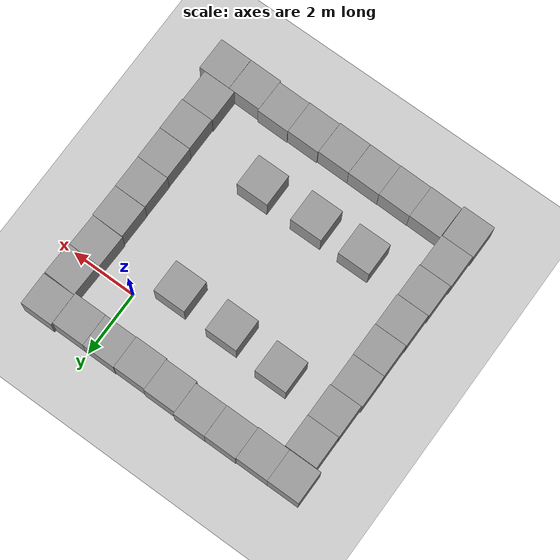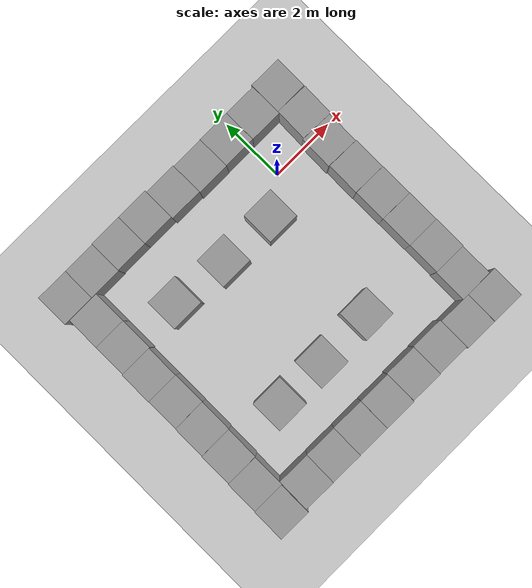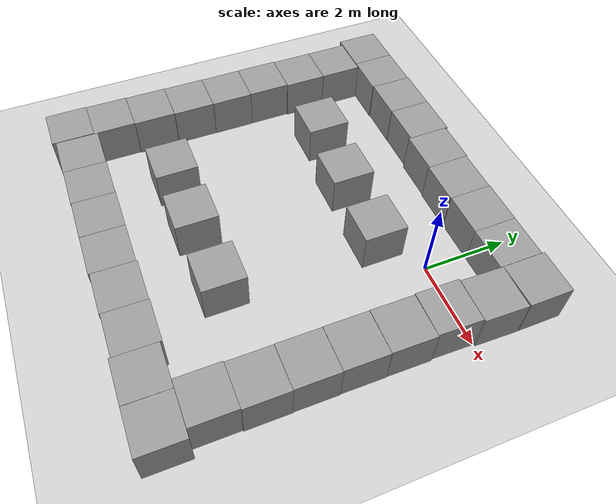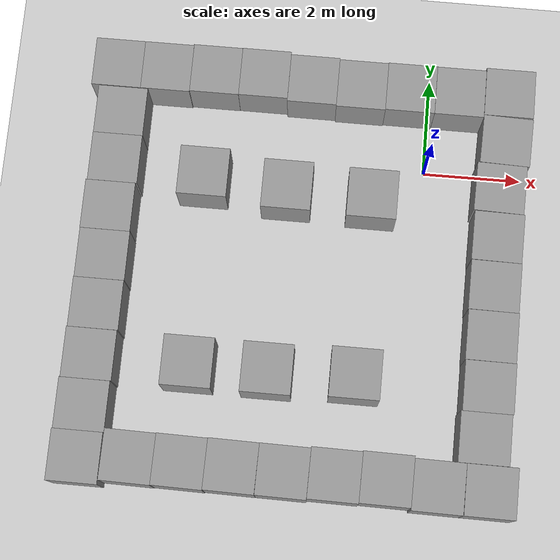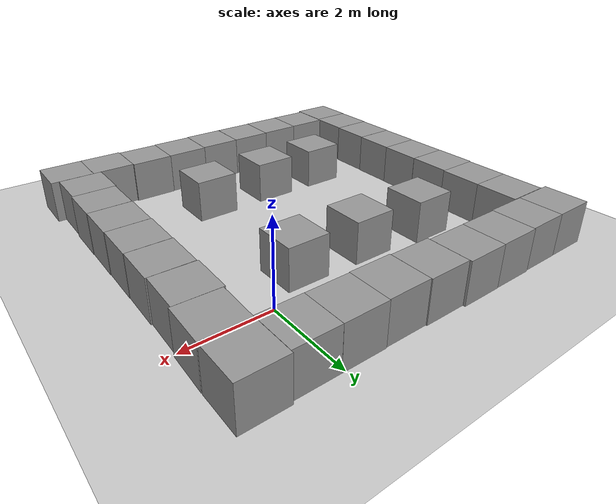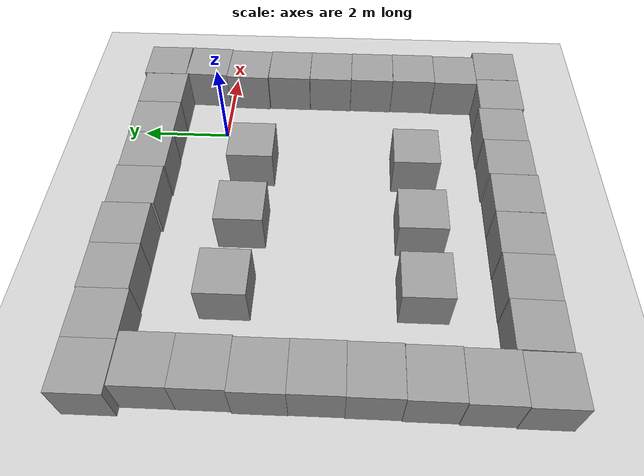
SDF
<sdf version="1.6">
 <world name="default">
  <light name="sun" type="directional">
   <pose>0 0 10 0 -0 0</pose>
   <diffuse>0.8 0.8 0.8 1</diffuse>
   <specular>0.1 0.1 0.1 1</specular>
   <attenuation>
    <range>1000</range>
    <constant>0.9</constant>
    <linear>0.01</linear>
    <quadratic>0.001</quadratic>
   </attenuation>
   <direction>-0.5 0.5 -1</direction>
  </light>
  <model name="ground_plane">
   <static>1</static>
   <link name="link">
    <collision name="collision">
     <geometry><plane><normal>0 0 1</normal><size>100 100</size></plane></geometry>
     <surface><friction><ode><mu>100</mu><mu2>50</mu2></ode></friction></surface>
    </collision>
    <visual name="visual">
     <cast_shadows>0</cast_shadows>
     <geometry><plane><normal>0 0 1</normal><size>100 100</size></plane></geometry>
     <material>
      <script><uri>file://media/materials/scripts/gazebo.material</uri><name>Gazebo/Grey</name></script>
     </material>
    </visual>
   </link>
  </model>
  <gravity>0 0 -9.8</gravity>
  <magnetic_field>6e-06 2.3e-05 -4.2e-05</magnetic_field>
  <atmosphere type="adiabatic"/>
  <physics name="default_physics" default="0" type="ode">
   <max_step_size>0.001</max_step_size>
   <real_time_factor>1</real_time_factor>
   <real_time_update_rate>1000</real_time_update_rate>
  </physics>
  <scene><ambient>0.4 0.4 0.4 1</ambient><background>0.7 0.7 0.7 1</background><shadows>1</shadows></scene>
  <spherical_coordinates>
   <surface_model>EARTH_WGS84</surface_model>
   <latitude_deg>0</latitude_deg>
   <longitude_deg>0</longitude_deg>
   <elevation>0</elevation>
   <heading_deg>0</heading_deg>
  </spherical_coordinates>
  <model name="unit_box_0_10">
   <pose>-0.421892 1.49598 0.499995 0 -1e-05 0.000849</pose>
   <link name="link">
    <inertial>
     <mass>1</mass>
     <inertia>
      <ixx>0.166667</ixx>
      <ixy>0</ixy>
      <ixz>0</ixz>
      <iyy>0.166667</iyy>
      <iyz>0</iyz>
      <izz>0.166667</izz>
     </inertia>
    </inertial>
    <collision name="collision"><geometry><box><size>1 1 1</size></box></geometry></collision>
    <visual name="visual">
     <geometry><box><size>1 1 1</size></box></geometry>
     <material>
      <script><name>Gazebo/Grey</name><uri>file://media/materials/scripts/gazebo.material</uri></script>
     </material>
    </visual>
   </link>
  </model>
  <model name="unit_box_0_11">
   <pose>-1.42189 1.48093 0.499995 1e-05 -0 0.000861</pose>
   <link name="link">
    <inertial>
     <mass>1</mass>
     <inertia>
      <ixx>0.166667</ixx>
      <ixy>0</ixy>
      <ixz>0</ixz>
      <iyy>0.166667</iyy>
      <iyz>0</iyz>
      <izz>0.166667</izz>
     </inertia>
    </inertial>
    <collision name="collision"><geometry><box><size>1 1 1</size></box></geometry></collision>
    <visual name="visual">
     <geometry><box><size>1 1 1</size></box></geometry>
     <material>
      <script><name>Gazebo/Grey</name><uri>file://media/materials/scripts/gazebo.material</uri></script>
     </material>
    </visual>
   </link>
  </model>
  <model name="unit_box_0_12">
   <pose>0.578477 1.49486 0.499995 -1e-05 -0 0.000904</pose>
   <link name="link">
    <inertial>
     <mass>1</mass>
     <inertia>
      <ixx>0.166667</ixx>
      <ixy>0</ixy>
      <ixz>0</ixz>
      <iyy>0.166667</iyy>
      <iyz>0</iyz>
      <izz>0.166667</izz>
     </inertia>
    </inertial>
    <collision name="collision"><geometry><box><size>1 1 1</size></box></geometry></collision>
    <visual name="visual">
     <geometry><box><size>1 1 1</size></box></geometry>
     <material>
      <script><name>Gazebo/Grey</name><uri>file://media/materials/scripts/gazebo.material</uri></script>
     </material>
    </visual>
   </link>
  </model>
  <model name="unit_box_0_13">
   <pose>1.58058 1.55397 0.499995 0 -1e-05 7.6e-05</pose>
   <link name="link">
    <inertial>
     <mass>1</mass>
     <inertia>
      <ixx>0.166667</ixx>
      <ixy>0</ixy>
      <ixz>0</ixz>
      <iyy>0.166667</iyy>
      <iyz>0</iyz>
      <izz>0.166667</izz>
     </inertia>
    </inertial>
    <collision name="collision"><geometry><box><size>1 1 1</size></box></geometry></collision>
    <visual name="visual">
     <geometry><box><size>1 1 1</size></box></geometry>
     <material>
      <script><name>Gazebo/Grey</name><uri>file://media/materials/scripts/gazebo.material</uri></script>
     </material>
    </visual>
   </link>
  </model>
  <model name="unit_box_0_14">
   <pose>1.56771 0.539858 0.5 0 0 -0.028551</pose>
   <link name="link">
    <inertial>
     <mass>1</mass>
     <inertia>
      <ixx>0.166667</ixx>
      <ixy>0</ixy>
      <ixz>0</ixz>
      <iyy>0.166667</iyy>
      <iyz>0</iyz>
      <izz>0.166667</izz>
     </inertia>
    </inertial>
    <collision name="collision"><geometry><box><size>1 1 1</size></box></geometry></collision>
    <visual name="visual">
     <geometry><box><size>1 1 1</size></box></geometry>
     <material>
      <script><name>Gazebo/Grey</name><uri>file://media/materials/scripts/gazebo.material</uri></script>
     </material>
    </visual>
   </link>
  </model>
  <model name="unit_box_0_15">
   <pose>1.5008 -0.460708 0.499995 0 -1e-05 -0.024412</pose>
   <link name="link">
    <inertial>
     <mass>1</mass>
     <inertia>
      <ixx>0.166667</ixx>
      <ixy>0</ixy>
      <ixz>0</ixz>
      <iyy>0.166667</iyy>
      <iyz>0</iyz>
      <izz>0.166667</izz>
     </inertia>
    </inertial>
    <collision name="collision"><geometry><box><size>1 1 1</size></box></geometry></collision>
    <visual name="visual">
     <geometry><box><size>1 1 1</size></box></geometry>
     <material>
      <script><name>Gazebo/Grey</name><uri>file://media/materials/scripts/gazebo.material</uri></script>
     </material>
    </visual>
   </link>
  </model>
  <model name="unit_box_0_16">
   <pose>1.50785 -1.46623 0.5 0 0 -0.01369</pose>
   <link name="link">
    <inertial>
     <mass>1</mass>
     <inertia>
      <ixx>0.166667</ixx>
      <ixy>0</ixy>
      <ixz>0</ixz>
      <iyy>0.166667</iyy>
      <iyz>0</iyz>
      <izz>0.166667</izz>
     </inertia>
    </inertial>
    <collision name="collision"><geometry><box><size>1 1 1</size></box></geometry></collision>
    <visual name="visual">
     <geometry><box><size>1 1 1</size></box></geometry>
     <material>
      <script><name>Gazebo/Grey</name><uri>file://media/materials/scripts/gazebo.material</uri></script>
     </material>
    </visual>
   </link>
  </model>
  <model name="unit_box_0_17">
   <pose>1.50396 -2.46871 0.499995 -0 1e-05 -0.008734</pose>
   <link name="link">
    <inertial>
     <mass>1</mass>
     <inertia>
      <ixx>0.166667</ixx>
      <ixy>0</ixy>
      <ixz>0</ixz>
      <iyy>0.166667</iyy>
      <iyz>0</iyz>
      <izz>0.166667</izz>
     </inertia>
    </inertial>
    <collision name="collision"><geometry><box><size>1 1 1</size></box></geometry></collision>
    <visual name="visual">
     <geometry><box><size>1 1 1</size></box></geometry>
     <material>
      <script><name>Gazebo/Grey</name><uri>file://media/materials/scripts/gazebo.material</uri></script>
     </material>
    </visual>
   </link>
  </model>
  <model name="unit_box_0_18">
   <pose>1.506 -3.46983 0.499995 0 -1e-05 -0.006574</pose>
   <link name="link">
    <inertial>
     <mass>1</mass>
     <inertia>
      <ixx>0.166667</ixx>
      <ixy>0</ixy>
      <ixz>0</ixz>
      <iyy>0.166667</iyy>
      <iyz>0</iyz>
      <izz>0.166667</izz>
     </inertia>
    </inertial>
    <collision name="collision"><geometry><box><size>1 1 1</size></box></geometry></collision>
    <visual name="visual">
     <geometry><box><size>1 1 1</size></box></geometry>
     <material>
      <script><name>Gazebo/Grey</name><uri>file://media/materials/scripts/gazebo.material</uri></script>
     </material>
    </visual>
   </link>
  </model>
  <model name="unit_box_0_30">
   <pose>1.48419 -5.47125 0.5 0 0 -0.0036</pose>
   <link name="link">
    <inertial>
     <mass>1</mass>
     <inertia>
      <ixx>0.166667</ixx>
      <ixy>0</ixy>
      <ixz>0</ixz>
      <iyy>0.166667</iyy>
      <iyz>0</iyz>
      <izz>0.166667</izz>
     </inertia>
    </inertial>
    <collision name="collision"><geometry><box><size>1 1 1</size></box></geometry></collision>
    <visual name="visual">
     <geometry><box><size>1 1 1</size></box></geometry>
     <material>
      <script><name>Gazebo/Grey</name><uri>file://media/materials/scripts/gazebo.material</uri></script>
     </material>
    </visual>
   </link>
  </model>
  <model name="unit_box_0_31">
   <pose>1.66096 -6.47444 0.499995 -1e-05 0 -0.00684</pose>
   <link name="link">
    <inertial>
     <mass>1</mass>
     <inertia>
      <ixx>0.166667</ixx>
      <ixy>0</ixy>
      <ixz>0</ixz>
      <iyy>0.166667</iyy>
      <iyz>0</iyz>
      <izz>0.166667</izz>
     </inertia>
    </inertial>
    <collision name="collision"><geometry><box><size>1 1 1</size></box></geometry></collision>
    <visual name="visual">
     <geometry><box><size>1 1 1</size></box></geometry>
     <material>
      <script><name>Gazebo/Grey</name><uri>file://media/materials/scripts/gazebo.material</uri></script>
     </material>
    </visual>
   </link>
  </model>
  <model name="unit_box_0_32">
   <pose>0.658631 -6.46621 0.5 0 0 -0.011212</pose>
   <link name="link">
    <inertial>
     <mass>1</mass>
     <inertia>
      <ixx>0.166667</ixx>
      <ixy>0</ixy>
      <ixz>0</ixz>
      <iyy>0.166667</iyy>
      <iyz>0</iyz>
      <izz>0.166667</izz>
     </inertia>
    </inertial>
    <collision name="collision"><geometry><box><size>1 1 1</size></box></geometry></collision>
    <visual name="visual">
     <geometry><box><size>1 1 1</size></box></geometry>
     <material>
      <script><name>Gazebo/Grey</name><uri>file://media/materials/scripts/gazebo.material</uri></script>
     </material>
    </visual>
   </link>
  </model>
  <model name="unit_box_0_33">
   <pose>-0.340967 -6.41067 0.499995 -1e-05 -0 -0.011552</pose>
   <link name="link">
    <inertial>
     <mass>1</mass>
     <inertia>
      <ixx>0.166667</ixx>
      <ixy>0</ixy>
      <ixz>0</ixz>
      <iyy>0.166667</iyy>
      <iyz>0</iyz>
      <izz>0.166667</izz>
     </inertia>
    </inertial>
    <collision name="collision"><geometry><box><size>1 1 1</size></box></geometry></collision>
    <visual name="visual">
     <geometry><box><size>1 1 1</size></box></geometry>
     <material>
      <script><name>Gazebo/Grey</name><uri>file://media/materials/scripts/gazebo.material</uri></script>
     </material>
    </visual>
   </link>
  </model>
  <model name="unit_box_0_34">
   <pose>-1.34113 -6.41658 0.5 0 0 -0.011599</pose>
   <link name="link">
    <inertial>
     <mass>1</mass>
     <inertia>
      <ixx>0.166667</ixx>
      <ixy>0</ixy>
      <ixz>0</ixz>
      <iyy>0.166667</iyy>
      <iyz>0</iyz>
      <izz>0.166667</izz>
     </inertia>
    </inertial>
    <collision name="collision"><geometry><box><size>1 1 1</size></box></geometry></collision>
    <visual name="visual">
     <geometry><box><size>1 1 1</size></box></geometry>
     <material>
      <script><name>Gazebo/Grey</name><uri>file://media/materials/scripts/gazebo.material</uri></script>
     </material>
    </visual>
   </link>
  </model>
  <model name="unit_box_0_35">
   <pose>-2.34193 -6.43248 0.499995 0 1e-05 -0.012705</pose>
   <link name="link">
    <inertial>
     <mass>1</mass>
     <inertia>
      <ixx>0.166667</ixx>
      <ixy>0</ixy>
      <ixz>0</ixz>
      <iyy>0.166667</iyy>
      <iyz>0</iyz>
      <izz>0.166667</izz>
     </inertia>
    </inertial>
    <collision name="collision"><geometry><box><size>1 1 1</size></box></geometry></collision>
    <visual name="visual">
     <geometry><box><size>1 1 1</size></box></geometry>
     <material>
      <script><name>Gazebo/Grey</name><uri>file://media/materials/scripts/gazebo.material</uri></script>
     </material>
    </visual>
   </link>
  </model>
  <model name="unit_box_0_36">
   <pose>-3.34323 -6.42121 0.499995 0 -1e-05 -0.015418</pose>
   <link name="link">
    <inertial>
     <mass>1</mass>
     <inertia>
      <ixx>0.166667</ixx>
      <ixy>0</ixy>
      <ixz>0</ixz>
      <iyy>0.166667</iyy>
      <iyz>0</iyz>
      <izz>0.166667</izz>
     </inertia>
    </inertial>
    <collision name="collision"><geometry><box><size>1 1 1</size></box></geometry></collision>
    <visual name="visual">
     <geometry><box><size>1 1 1</size></box></geometry>
     <material>
      <script><name>Gazebo/Grey</name><uri>file://media/materials/scripts/gazebo.material</uri></script>
     </material>
    </visual>
   </link>
  </model>
  <model name="unit_box_0_38">
   <pose>-4.34331 -6.41688 0.5 0 0 -0.015472</pose>
   <link name="link">
    <inertial>
     <mass>1</mass>
     <inertia>
      <ixx>0.166667</ixx>
      <ixy>0</ixy>
      <ixz>0</ixz>
      <iyy>0.166667</iyy>
      <iyz>0</iyz>
      <izz>0.166667</izz>
     </inertia>
    </inertial>
    <collision name="collision"><geometry><box><size>1 1 1</size></box></geometry></collision>
    <visual name="visual">
     <geometry><box><size>1 1 1</size></box></geometry>
     <material>
      <script><name>Gazebo/Grey</name><uri>file://media/materials/scripts/gazebo.material</uri></script>
     </material>
    </visual>
   </link>
  </model>
  <model name="unit_box_0_39">
   <pose>-5.34333 -6.41029 0.499995 1e-05 0 -0.015477</pose>
   <link name="link">
    <inertial>
     <mass>1</mass>
     <inertia>
      <ixx>0.166667</ixx>
      <ixy>0</ixy>
      <ixz>0</ixz>
      <iyy>0.166667</iyy>
      <iyz>0</iyz>
      <izz>0.166667</izz>
     </inertia>
    </inertial>
    <collision name="collision"><geometry><box><size>1 1 1</size></box></geometry></collision>
    <visual name="visual">
     <geometry><box><size>1 1 1</size></box></geometry>
     <material>
      <script><name>Gazebo/Grey</name><uri>file://media/materials/scripts/gazebo.material</uri></script>
     </material>
    </visual>
   </link>
  </model>
  <model name="unit_box_0_40">
   <pose>-6.35594 -6.4899 0.499995 0 1e-05 -0.002438</pose>
   <link name="link">
    <inertial>
     <mass>1</mass>
     <inertia>
      <ixx>0.166667</ixx>
      <ixy>0</ixy>
      <ixz>0</ixz>
      <iyy>0.166667</iyy>
      <iyz>0</iyz>
      <izz>0.166667</izz>
     </inertia>
    </inertial>
    <collision name="collision"><geometry><box><size>1 1 1</size></box></geometry></collision>
    <visual name="visual">
     <geometry><box><size>1 1 1</size></box></geometry>
     <material>
      <script><name>Gazebo/Grey</name><uri>file://media/materials/scripts/gazebo.material</uri></script>
     </material>
    </visual>
   </link>
  </model>
  <model name="unit_box_0_41">
   <pose>-6.33568 -5.48993 0.499995 -1e-05 -0 -0.002452</pose>
   <link name="link">
    <inertial>
     <mass>1</mass>
     <inertia>
      <ixx>0.166667</ixx>
      <ixy>0</ixy>
      <ixz>0</ixz>
      <iyy>0.166667</iyy>
      <iyz>0</iyz>
      <izz>0.166667</izz>
     </inertia>
    </inertial>
    <collision name="collision"><geometry><box><size>1 1 1</size></box></geometry></collision>
    <visual name="visual">
     <geometry><box><size>1 1 1</size></box></geometry>
     <material>
      <script><name>Gazebo/Grey</name><uri>file://media/materials/scripts/gazebo.material</uri></script>
     </material>
    </visual>
   </link>
  </model>
  <model name="unit_box_0_42">
   <pose>-6.31366 -4.48966 0.499995 9e-06 -0 -0.001815</pose>
   <link name="link">
    <inertial>
     <mass>1</mass>
     <inertia>
      <ixx>0.166667</ixx>
      <ixy>0</ixy>
      <ixz>0</ixz>
      <iyy>0.166667</iyy>
      <iyz>0</iyz>
      <izz>0.166667</izz>
     </inertia>
    </inertial>
    <collision name="collision"><geometry><box><size>1 1 1</size></box></geometry></collision>
    <visual name="visual">
     <geometry><box><size>1 1 1</size></box></geometry>
     <material>
      <script><name>Gazebo/Grey</name><uri>file://media/materials/scripts/gazebo.material</uri></script>
     </material>
    </visual>
   </link>
  </model>
  <model name="unit_box_0_43">
   <pose>-6.29683 -3.48884 0.499995 -9e-06 -0 -0.000128</pose>
   <link name="link">
    <inertial>
     <mass>1</mass>
     <inertia>
      <ixx>0.166667</ixx>
      <ixy>0</ixy>
      <ixz>0</ixz>
      <iyy>0.166667</iyy>
      <iyz>0</iyz>
      <izz>0.166667</izz>
     </inertia>
    </inertial>
    <collision name="collision"><geometry><box><size>1 1 1</size></box></geometry></collision>
    <visual name="visual">
     <geometry><box><size>1 1 1</size></box></geometry>
     <material>
      <script><name>Gazebo/Grey</name><uri>file://media/materials/scripts/gazebo.material</uri></script>
     </material>
    </visual>
   </link>
  </model>
  <model name="unit_box_0_44">
   <pose>-6.28775 -2.48851 0.499995 0 -1e-05 0.000519</pose>
   <link name="link">
    <inertial>
     <mass>1</mass>
     <inertia>
      <ixx>0.166667</ixx>
      <ixy>0</ixy>
      <ixz>0</ixz>
      <iyy>0.166667</iyy>
      <iyz>0</iyz>
      <izz>0.166667</izz>
     </inertia>
    </inertial>
    <collision name="collision"><geometry><box><size>1 1 1</size></box></geometry></collision>
    <visual name="visual">
     <geometry><box><size>1 1 1</size></box></geometry>
     <material>
      <script><name>Gazebo/Grey</name><uri>file://media/materials/scripts/gazebo.material</uri></script>
     </material>
    </visual>
   </link>
  </model>
  <model name="unit_box_0_45">
   <pose>-6.29358 -1.48838 0.5 0 -0 0.0008</pose>
   <link name="link">
    <inertial>
     <mass>1</mass>
     <inertia>
      <ixx>0.166667</ixx>
      <ixy>0</ixy>
      <ixz>0</ixz>
      <iyy>0.166667</iyy>
      <iyz>0</iyz>
      <izz>0.166667</izz>
     </inertia>
    </inertial>
    <collision name="collision"><geometry><box><size>1 1 1</size></box></geometry></collision>
    <visual name="visual">
     <geometry><box><size>1 1 1</size></box></geometry>
     <material>
      <script><name>Gazebo/Grey</name><uri>file://media/materials/scripts/gazebo.material</uri></script>
     </material>
    </visual>
   </link>
  </model>
  <model name="unit_box_0_46">
   <pose>-6.26656 -0.488269 0.499995 0 1e-05 0.000964</pose>
   <link name="link">
    <inertial>
     <mass>1</mass>
     <inertia>
      <ixx>0.166667</ixx>
      <ixy>0</ixy>
      <ixz>0</ixz>
      <iyy>0.166667</iyy>
      <iyz>0</iyz>
      <izz>0.166667</izz>
     </inertia>
    </inertial>
    <collision name="collision"><geometry><box><size>1 1 1</size></box></geometry></collision>
    <visual name="visual">
     <geometry><box><size>1 1 1</size></box></geometry>
     <material>
      <script><name>Gazebo/Grey</name><uri>file://media/materials/scripts/gazebo.material</uri></script>
     </material>
    </visual>
   </link>
  </model>
  <model name="unit_box_0_47">
   <pose>-6.26408 0.511779 0.499995 0 -1e-05 0.00104</pose>
   <link name="link">
    <inertial>
     <mass>1</mass>
     <inertia>
      <ixx>0.166667</ixx>
      <ixy>0</ixy>
      <ixz>0</ixz>
      <iyy>0.166667</iyy>
      <iyz>0</iyz>
      <izz>0.166667</izz>
     </inertia>
    </inertial>
    <collision name="collision"><geometry><box><size>1 1 1</size></box></geometry></collision>
    <visual name="visual">
     <geometry><box><size>1 1 1</size></box></geometry>
     <material>
      <script><name>Gazebo/Grey</name><uri>file://media/materials/scripts/gazebo.material</uri></script>
     </material>
    </visual>
   </link>
  </model>
  <model name="unit_box_0_50">
   <pose>-6.42248 1.5235 0.5 0 -0 0.001216</pose>
   <link name="link">
    <inertial>
     <mass>1</mass>
     <inertia>
      <ixx>0.166667</ixx>
      <ixy>0</ixy>
      <ixz>0</ixz>
      <iyy>0.166667</iyy>
      <iyz>0</iyz>
      <izz>0.166667</izz>
     </inertia>
    </inertial>
    <collision name="collision"><geometry><box><size>1 1 1</size></box></geometry></collision>
    <visual name="visual">
     <geometry><box><size>1 1 1</size></box></geometry>
     <material>
      <script><name>Gazebo/Grey</name><uri>file://media/materials/scripts/gazebo.material</uri></script>
     </material>
    </visual>
   </link>
  </model>
  <model name="unit_box_0_51">
   <pose>-5.42247 1.52677 0.5 0 -0 0.001214</pose>
   <link name="link">
    <inertial>
     <mass>1</mass>
     <inertia>
      <ixx>0.166667</ixx>
      <ixy>0</ixy>
      <ixz>0</ixz>
      <iyy>0.166667</iyy>
      <iyz>0</iyz>
      <izz>0.166667</izz>
     </inertia>
    </inertial>
    <collision name="collision"><geometry><box><size>1 1 1</size></box></geometry></collision>
    <visual name="visual">
     <geometry><box><size>1 1 1</size></box></geometry>
     <material>
      <script><name>Gazebo/Grey</name><uri>file://media/materials/scripts/gazebo.material</uri></script>
     </material>
    </visual>
   </link>
  </model>
  <model name="unit_box_0_52">
   <pose>-4.4224 1.54835 0.499995 0 1e-05 0.001066</pose>
   <link name="link">
    <inertial>
     <mass>1</mass>
     <inertia>
      <ixx>0.166667</ixx>
      <ixy>0</ixy>
      <ixz>0</ixz>
      <iyy>0.166667</iyy>
      <iyz>0</iyz>
      <izz>0.166667</izz>
     </inertia>
    </inertial>
    <collision name="collision"><geometry><box><size>1 1 1</size></box></geometry></collision>
    <visual name="visual">
     <geometry><box><size>1 1 1</size></box></geometry>
     <material>
      <script><name>Gazebo/Grey</name><uri>file://media/materials/scripts/gazebo.material</uri></script>
     </material>
    </visual>
   </link>
  </model>
  <model name="unit_box_0_53">
   <pose>-3.42238 1.55507 0.499995 -1e-05 -0 0.001023</pose>
   <link name="link">
    <inertial>
     <mass>1</mass>
     <inertia>
      <ixx>0.166667</ixx>
      <ixy>0</ixy>
      <ixz>0</ixz>
      <iyy>0.166667</iyy>
      <iyz>0</iyz>
      <izz>0.166667</izz>
     </inertia>
    </inertial>
    <collision name="collision"><geometry><box><size>1 1 1</size></box></geometry></collision>
    <visual name="visual">
     <geometry><box><size>1 1 1</size></box></geometry>
     <material>
      <script><name>Gazebo/Grey</name><uri>file://media/materials/scripts/gazebo.material</uri></script>
     </material>
    </visual>
   </link>
  </model>
  <model name="unit_box_0_54">
   <pose>-2.42204 1.50423 0.499995 -1e-05 0 0.000743</pose>
   <link name="link">
    <inertial>
     <mass>1</mass>
     <inertia>
      <ixx>0.166667</ixx>
      <ixy>0</ixy>
      <ixz>0</ixz>
      <iyy>0.166667</iyy>
      <iyz>0</iyz>
      <izz>0.166667</izz>
     </inertia>
    </inertial>
    <collision name="collision"><geometry><box><size>1 1 1</size></box></geometry></collision>
    <visual name="visual">
     <geometry><box><size>1 1 1</size></box></geometry>
     <material>
      <script><name>Gazebo/Grey</name><uri>file://media/materials/scripts/gazebo.material</uri></script>
     </material>
    </visual>
   </link>
  </model>
  <model name="unit_box_0_57">
   <pose>-1.09408 -4.42309 0.499995 -1e-05 0 0</pose>
   <link name="link">
    <inertial>
     <mass>1</mass>
     <inertia>
      <ixx>0.166667</ixx>
      <ixy>0</ixy>
      <ixz>0</ixz>
      <iyy>0.166667</iyy>
      <iyz>0</iyz>
      <izz>0.166667</izz>
     </inertia>
    </inertial>
    <collision name="collision"><geometry><box><size>1 1 1</size></box></geometry></collision>
    <visual name="visual">
     <geometry><box><size>1 1 1</size></box></geometry>
     <material>
      <script><name>Gazebo/Grey</name><uri>file://media/materials/scripts/gazebo.material</uri></script>
     </material>
    </visual>
   </link>
  </model>
  <model name="unit_box_0_63">
   <pose>-2.82761 -4.47187 0.499995 0 1e-05 0</pose>
   <link name="link">
    <inertial>
     <mass>1</mass>
     <inertia>
      <ixx>0.166667</ixx>
      <ixy>0</ixy>
      <ixz>0</ixz>
      <iyy>0.166667</iyy>
      <iyz>0</iyz>
      <izz>0.166667</izz>
     </inertia>
    </inertial>
    <collision name="collision"><geometry><box><size>1 1 1</size></box></geometry></collision>
    <visual name="visual">
     <geometry><box><size>1 1 1</size></box></geometry>
     <material>
      <script><name>Gazebo/Grey</name><uri>file://media/materials/scripts/gazebo.material</uri></script>
     </material>
    </visual>
   </link>
  </model>
  <model name="unit_box_0_64">
   <pose>-4.39021 -4.47171 0.499995 -1e-05 0 0</pose>
   <link name="link">
    <inertial>
     <mass>1</mass>
     <inertia>
      <ixx>0.166667</ixx>
      <ixy>0</ixy>
      <ixz>0</ixz>
      <iyy>0.166667</iyy>
      <iyz>0</iyz>
      <izz>0.166667</izz>
     </inertia>
    </inertial>
    <collision name="collision"><geometry><box><size>1 1 1</size></box></geometry></collision>
    <visual name="visual">
     <geometry><box><size>1 1 1</size></box></geometry>
     <material>
      <script><name>Gazebo/Grey</name><uri>file://media/materials/scripts/gazebo.material</uri></script>
     </material>
    </visual>
   </link>
  </model>
  <model name="unit_box_0_66">
   <pose>-1.04079 -0.782537 0.499995 0 1e-05 0</pose>
   <link name="link">
    <inertial>
     <mass>1</mass>
     <inertia>
      <ixx>0.166667</ixx>
      <ixy>0</ixy>
      <ixz>0</ixz>
      <iyy>0.166667</iyy>
      <iyz>0</iyz>
      <izz>0.166667</izz>
     </inertia>
    </inertial>
    <collision name="collision"><geometry><box><size>1 1 1</size></box></geometry></collision>
    <visual name="visual">
     <geometry><box><size>1 1 1</size></box></geometry>
     <material>
      <script><name>Gazebo/Grey</name><uri>file://media/materials/scripts/gazebo.material</uri></script>
     </material>
    </visual>
   </link>
  </model>
  <model name="unit_box_0_68">
   <pose>-2.76286 -0.746158 0.499995 0 1e-05 0</pose>
   <link name="link">
    <inertial>
     <mass>1</mass>
     <inertia>
      <ixx>0.166667</ixx>
      <ixy>0</ixy>
      <ixz>0</ixz>
      <iyy>0.166667</iyy>
      <iyz>0</iyz>
      <izz>0.166667</izz>
     </inertia>
    </inertial>
    <collision name="collision"><geometry><box><size>1 1 1</size></box></geometry></collision>
    <visual name="visual">
     <geometry><box><size>1 1 1</size></box></geometry>
     <material>
      <script><name>Gazebo/Grey</name><uri>file://media/materials/scripts/gazebo.material</uri></script>
     </material>
    </visual>
   </link>
  </model>
  <model name="unit_box_0_70">
   <pose>-4.46648 -0.613832 0.499995 0 -1e-05 0</pose>
   <link name="link">
    <inertial>
     <mass>1</mass>
     <inertia>
      <ixx>0.166667</ixx>
      <ixy>0</ixy>
      <ixz>0</ixz>
      <iyy>0.166667</iyy>
      <iyz>0</iyz>
      <izz>0.166667</izz>
     </inertia>
    </inertial>
    <collision name="collision"><geometry><box><size>1 1 1</size></box></geometry></collision>
    <visual name="visual">
     <geometry><box><size>1 1 1</size></box></geometry>
     <material>
      <script><name>Gazebo/Grey</name><uri>file://media/materials/scripts/gazebo.material</uri></script>
     </material>
    </visual>
   </link>
  </model>
  <model name="unit_box_0">
   <pose>1.50982 -4.47133 0.499995 0 1e-05 -0.003599</pose>
   <link name="link">
    <inertial>
     <mass>1</mass>
     <inertia>
      <ixx>0.166667</ixx>
      <ixy>0</ixy>
      <ixz>0</ixz>
      <iyy>0.166667</iyy>
      <iyz>0</iyz>
      <izz>0.166667</izz>
     </inertia>
    </inertial>
    <collision name="collision"><geometry><box><size>1 1 1</size></box></geometry></collision>
    <visual name="visual">
     <geometry><box><size>1 1 1</size></box></geometry>
     <material>
      <script><name>Gazebo/Grey</name><uri>file://media/materials/scripts/gazebo.material</uri></script>
     </material>
    </visual>
   </link>
  </model>
 </world>
</sdf>
